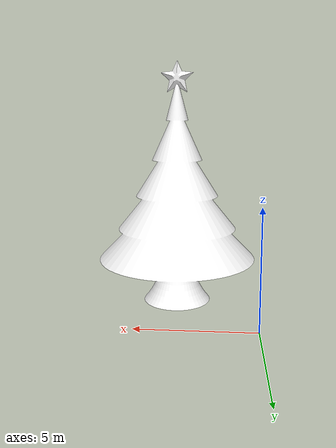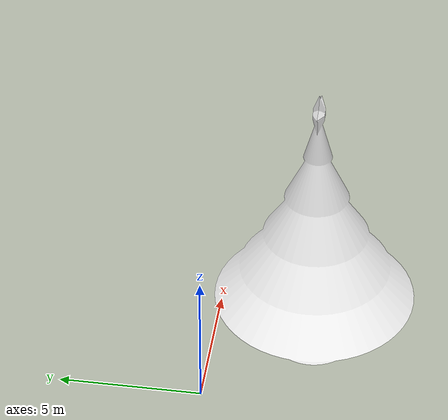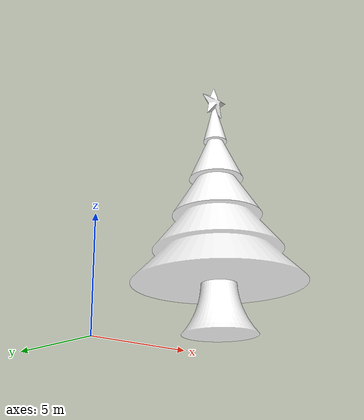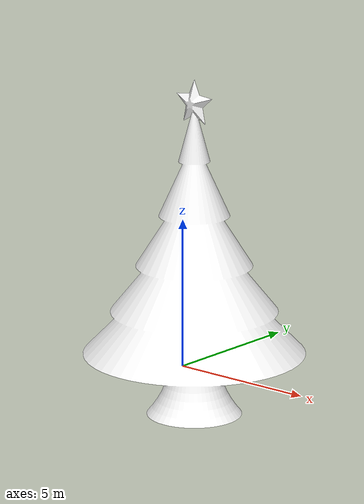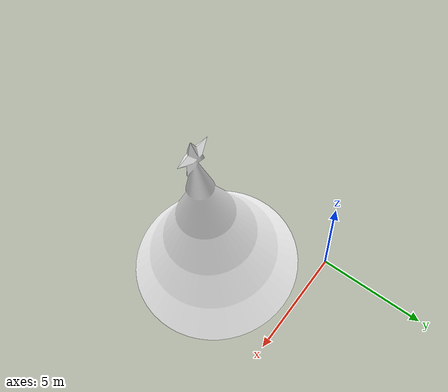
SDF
<?xml version="1.0" ?>
<sdf version="1.6">

  <!-- Model -->
  <model name="arbol">
    <pose>0 0 0 0 0 0</pose>
    <static>true</static>

    <!-- Link -->
    <link name="link">
      <visual name="visual">
        <geometry>
          <mesh>
            <scale>1 1 1</scale>
            <uri>model://arbol/meshes/arbol.dae</uri>
          </mesh>
        </geometry>
        <material>
          <script>
            <uri>model://arbol/materials/textures</uri>
            <uri>model://arbol/materials/scripts</uri>
            <name>ArbolTexture</name>
          </script>
          <ambient>1 1 1 1</ambient>
          <diffuse>1 1 1 1</diffuse>
          <specular>1 1 1 1</specular>
          <emissive>0 0 0 1</emissive>
        </material>
      </visual>

    </link>

  </model>
</sdf>
